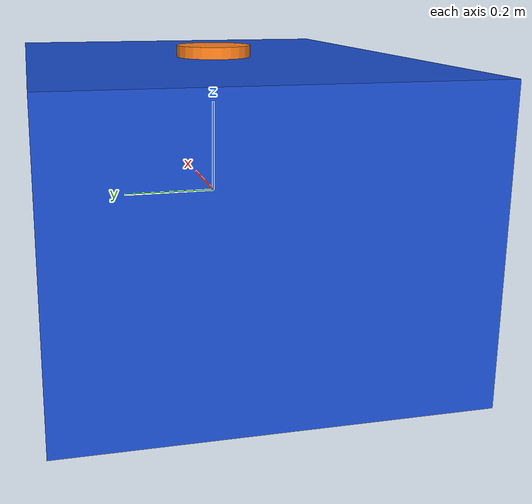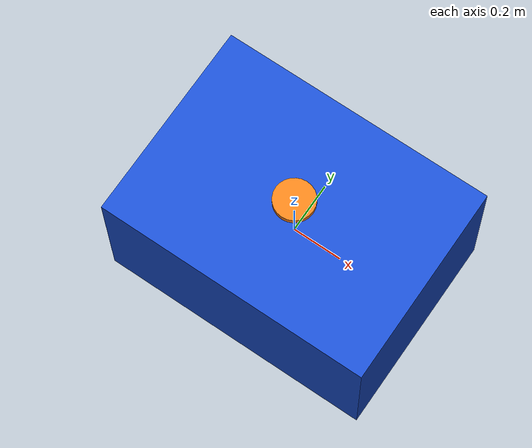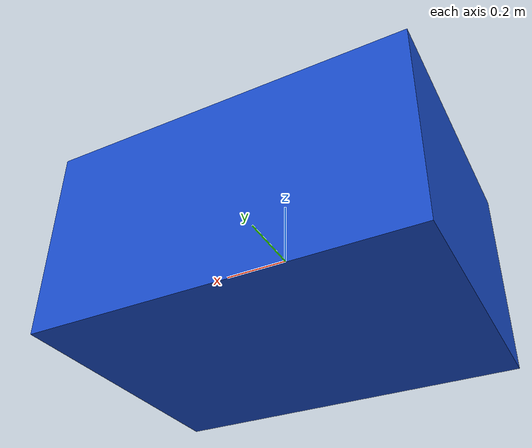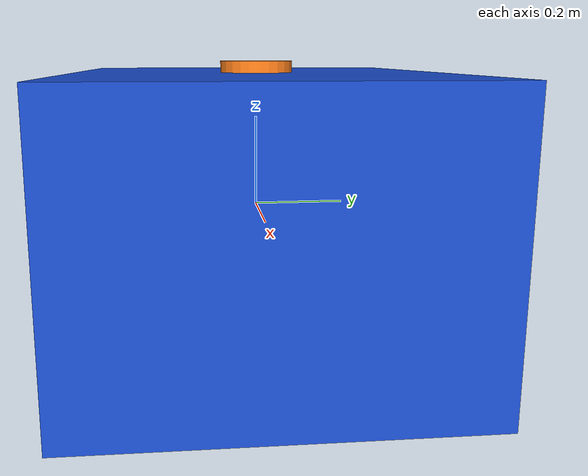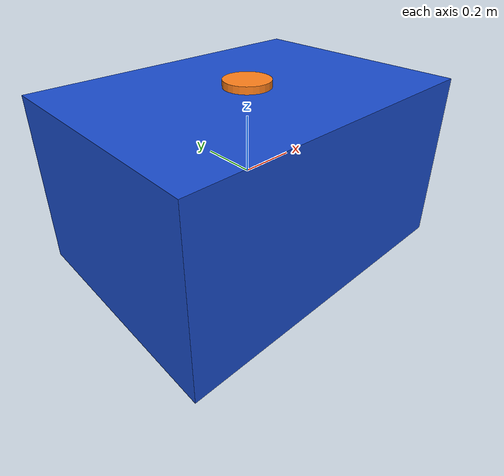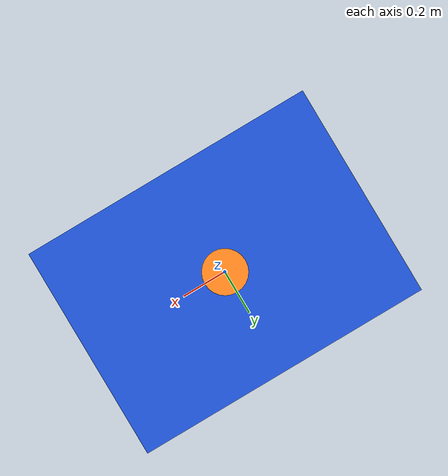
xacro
<?xml version="1.0"?>
<robot name="lidar_robot">

  <!-- Материалы -->
  <material name="blue">
    <color rgba="0.1 0.3 0.8 1.0"/>
  </material>
  <material name="orange">
    <color rgba="1.0 0.5 0.1 1.0"/>
  </material>

  <!-- 1. БАЗОВОЕ ЗВЕНО (корпус робота)                   -->
  <link name="base_link">
    <visual>
      <origin xyz="0 0 0" rpy="0 0 0"/>
      <geometry>
        <box size="1.1 0.8 0.6"/>
      </geometry>
      <material name="blue"/>
    </visual>
    <collision>
      <origin xyz="0 0 0" rpy="0 0 0"/>
      <geometry>
        <box size="1.1 0.8 0.6"/>
      </geometry>
    </collision>
    <inertial>
      <origin xyz="0 0 0" rpy="0 0 0"/>
      <mass value="10.0"/>
      <inertia ixx="0.5" ixy="0.0" ixz="0.0"
               iyy="0.8" iyz="0.0"
               izz="0.7"/>
    </inertial>
  </link>

  <!-- 2. ЛИДАР (исправленная ориентация)                 -->
  <link name="laser_frame">
    <visual>
      <origin xyz="0 0 0" rpy="0 0 0"/>
      <geometry>
        <cylinder radius="0.08" length="0.05"/>
      </geometry>
      <material name="orange"/>
    </visual>
    <collision>
      <origin xyz="0 0 0" rpy="0 0 0"/>
      <geometry>
        <cylinder radius="0.08" length="0.05"/>
      </geometry>
    </collision>
    <inertial>
      <origin xyz="0 0 0" rpy="0 0 0"/>
      <mass value="0.2"/>
      <inertia ixx="0.001" ixy="0.0" ixz="0.0"
               iyy="0.001" iyz="0.0"
               izz="0.001"/>
    </inertial>
  </link>

  <!-- 3. СОЕДИНЕНИЕ (исправлен поворот)                  -->
  <!--    Поворот на 180° вокруг Z, чтобы развернуть оси  -->
  <joint name="lidar_joint" type="fixed">
    <parent link="base_link"/>
    <child link="laser_frame"/>
    <origin xyz="0 0 0.3" rpy="3.14159 3.14159 3.14159"/>
  </joint>

</robot>
